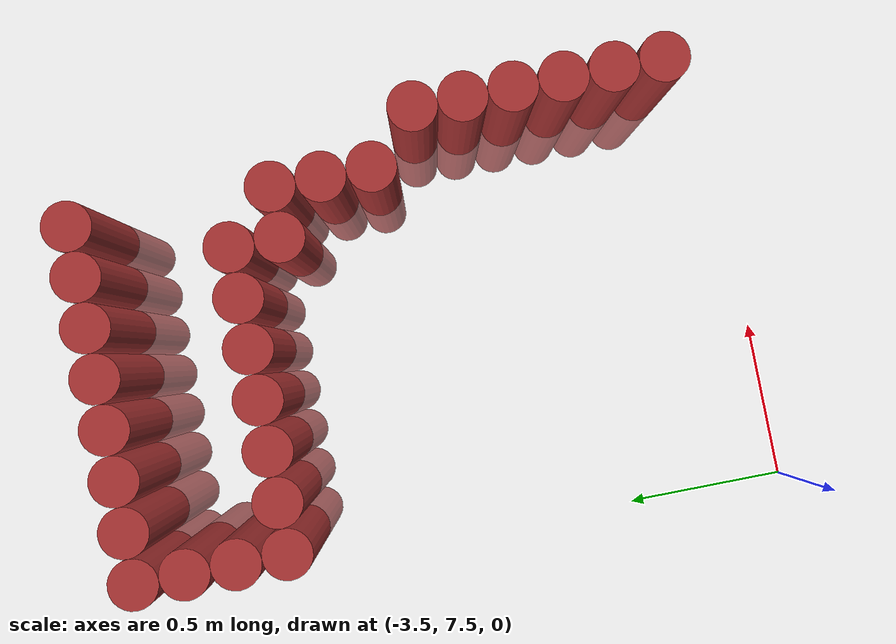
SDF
<sdf version="1.6">
 <world name="default">
  <model name="ground_plane">
   <static>1</static>
   <link name="link">
    <collision name="collision">
     <geometry><plane><normal>0 0 1</normal><size>100 100</size></plane></geometry>
     <surface><friction><ode><mu>100</mu><mu2>50</mu2></ode></friction></surface>
    </collision>
    <visual name="visual">
     <cast_shadows>0</cast_shadows>
     <geometry><plane><normal>0 0 1</normal><size>100 100</size></plane></geometry>
     <material>
      <script><uri>file://media/materials/scripts/gazebo.material</uri><name>Gazebo/Grey</name></script>
     </material>
    </visual>
   </link>
  </model>
  <model name="unit_cylinder_276">
   <static>1</static>
   <pose>-3.375000 9.075000 0.000000 0.000000 0.000000 0.000000</pose>
   <link name="link">
    <inertial>
     <mass>1</mass>
     <inertia><ixx>0.145833</ixx><ixy>0</ixy><ixz>0</ixz><iyy>0.145833</iyy><iyz>0</iyz><izz>0.125</izz></inertia>
    </inertial>
    <collision name="collision">
     <geometry><cylinder><radius>0.075000</radius><length>1</length></cylinder></geometry>
    </collision>
    <visual name="visual">
     <geometry><cylinder><radius>0.075000</radius><length>1</length></cylinder></geometry>
     <material>
      <ambient>0.648000 0.192000 0.192000 1</ambient>
      <diffuse>0.648000 0.192000 0.192000 1</diffuse>
     </material>
     <material>
      <script><name>Gazebo/Grey</name><uri>file://media/materials/scripts/gazebo.material</uri></script>
     </material>
    </visual>
   </link>
  </model>
  <model name="unit_cylinder_277">
   <static>1</static>
   <pose>-3.375000 9.225000 0.000000 0.000000 0.000000 0.000000</pose>
   <link name="link">
    <inertial>
     <mass>1</mass>
     <inertia><ixx>0.145833</ixx><ixy>0</ixy><ixz>0</ixz><iyy>0.145833</iyy><iyz>0</iyz><izz>0.125</izz></inertia>
    </inertial>
    <collision name="collision">
     <geometry><cylinder><radius>0.075000</radius><length>1</length></cylinder></geometry>
    </collision>
    <visual name="visual">
     <geometry><cylinder><radius>0.075000</radius><length>1</length></cylinder></geometry>
     <material>
      <ambient>0.648000 0.192000 0.192000 1</ambient>
      <diffuse>0.648000 0.192000 0.192000 1</diffuse>
     </material>
     <material>
      <script><name>Gazebo/Grey</name><uri>file://media/materials/scripts/gazebo.material</uri></script>
     </material>
    </visual>
   </link>
  </model>
  <model name="unit_cylinder_278">
   <static>1</static>
   <pose>-3.375000 9.375000 0.000000 0.000000 0.000000 0.000000</pose>
   <link name="link">
    <inertial>
     <mass>1</mass>
     <inertia><ixx>0.145833</ixx><ixy>0</ixy><ixz>0</ixz><iyy>0.145833</iyy><iyz>0</iyz><izz>0.125</izz></inertia>
    </inertial>
    <collision name="collision">
     <geometry><cylinder><radius>0.075000</radius><length>1</length></cylinder></geometry>
    </collision>
    <visual name="visual">
     <geometry><cylinder><radius>0.075000</radius><length>1</length></cylinder></geometry>
     <material>
      <ambient>0.648000 0.192000 0.192000 1</ambient>
      <diffuse>0.648000 0.192000 0.192000 1</diffuse>
     </material>
     <material>
      <script><name>Gazebo/Grey</name><uri>file://media/materials/scripts/gazebo.material</uri></script>
     </material>
    </visual>
   </link>
  </model>
  <model name="unit_cylinder_279">
   <static>1</static>
   <pose>-3.375000 9.525000 0.000000 0.000000 0.000000 0.000000</pose>
   <link name="link">
    <inertial>
     <mass>1</mass>
     <inertia><ixx>0.145833</ixx><ixy>0</ixy><ixz>0</ixz><iyy>0.145833</iyy><iyz>0</iyz><izz>0.125</izz></inertia>
    </inertial>
    <collision name="collision">
     <geometry><cylinder><radius>0.075000</radius><length>1</length></cylinder></geometry>
    </collision>
    <visual name="visual">
     <geometry><cylinder><radius>0.075000</radius><length>1</length></cylinder></geometry>
     <material>
      <ambient>0.648000 0.192000 0.192000 1</ambient>
      <diffuse>0.648000 0.192000 0.192000 1</diffuse>
     </material>
     <material>
      <script><name>Gazebo/Grey</name><uri>file://media/materials/scripts/gazebo.material</uri></script>
     </material>
    </visual>
   </link>
  </model>
  <model name="unit_cylinder_280">
   <static>1</static>
   <pose>-3.225000 9.075000 0.000000 0.000000 0.000000 0.000000</pose>
   <link name="link">
    <inertial>
     <mass>1</mass>
     <inertia><ixx>0.145833</ixx><ixy>0</ixy><ixz>0</ixz><iyy>0.145833</iyy><iyz>0</iyz><izz>0.125</izz></inertia>
    </inertial>
    <collision name="collision">
     <geometry><cylinder><radius>0.075000</radius><length>1</length></cylinder></geometry>
    </collision>
    <visual name="visual">
     <geometry><cylinder><radius>0.075000</radius><length>1</length></cylinder></geometry>
     <material>
      <ambient>0.648000 0.192000 0.192000 1</ambient>
      <diffuse>0.648000 0.192000 0.192000 1</diffuse>
     </material>
     <material>
      <script><name>Gazebo/Grey</name><uri>file://media/materials/scripts/gazebo.material</uri></script>
     </material>
    </visual>
   </link>
  </model>
  <model name="unit_cylinder_281">
   <static>1</static>
   <pose>-3.225000 9.525000 0.000000 0.000000 0.000000 0.000000</pose>
   <link name="link">
    <inertial>
     <mass>1</mass>
     <inertia><ixx>0.145833</ixx><ixy>0</ixy><ixz>0</ixz><iyy>0.145833</iyy><iyz>0</iyz><izz>0.125</izz></inertia>
    </inertial>
    <collision name="collision">
     <geometry><cylinder><radius>0.075000</radius><length>1</length></cylinder></geometry>
    </collision>
    <visual name="visual">
     <geometry><cylinder><radius>0.075000</radius><length>1</length></cylinder></geometry>
     <material>
      <ambient>0.648000 0.192000 0.192000 1</ambient>
      <diffuse>0.648000 0.192000 0.192000 1</diffuse>
     </material>
     <material>
      <script><name>Gazebo/Grey</name><uri>file://media/materials/scripts/gazebo.material</uri></script>
     </material>
    </visual>
   </link>
  </model>
  <model name="unit_cylinder_282">
   <static>1</static>
   <pose>-3.075000 9.075000 0.000000 0.000000 0.000000 0.000000</pose>
   <link name="link">
    <inertial>
     <mass>1</mass>
     <inertia><ixx>0.145833</ixx><ixy>0</ixy><ixz>0</ixz><iyy>0.145833</iyy><iyz>0</iyz><izz>0.125</izz></inertia>
    </inertial>
    <collision name="collision">
     <geometry><cylinder><radius>0.075000</radius><length>1</length></cylinder></geometry>
    </collision>
    <visual name="visual">
     <geometry><cylinder><radius>0.075000</radius><length>1</length></cylinder></geometry>
     <material>
      <ambient>0.648000 0.192000 0.192000 1</ambient>
      <diffuse>0.648000 0.192000 0.192000 1</diffuse>
     </material>
     <material>
      <script><name>Gazebo/Grey</name><uri>file://media/materials/scripts/gazebo.material</uri></script>
     </material>
    </visual>
   </link>
  </model>
  <model name="unit_cylinder_283">
   <static>1</static>
   <pose>-3.075000 9.525000 0.000000 0.000000 0.000000 0.000000</pose>
   <link name="link">
    <inertial>
     <mass>1</mass>
     <inertia><ixx>0.145833</ixx><ixy>0</ixy><ixz>0</ixz><iyy>0.145833</iyy><iyz>0</iyz><izz>0.125</izz></inertia>
    </inertial>
    <collision name="collision">
     <geometry><cylinder><radius>0.075000</radius><length>1</length></cylinder></geometry>
    </collision>
    <visual name="visual">
     <geometry><cylinder><radius>0.075000</radius><length>1</length></cylinder></geometry>
     <material>
      <ambient>0.648000 0.192000 0.192000 1</ambient>
      <diffuse>0.648000 0.192000 0.192000 1</diffuse>
     </material>
     <material>
      <script><name>Gazebo/Grey</name><uri>file://media/materials/scripts/gazebo.material</uri></script>
     </material>
    </visual>
   </link>
  </model>
  <model name="unit_cylinder_284">
   <static>1</static>
   <pose>-2.925000 9.075000 0.000000 0.000000 0.000000 0.000000</pose>
   <link name="link">
    <inertial>
     <mass>1</mass>
     <inertia><ixx>0.145833</ixx><ixy>0</ixy><ixz>0</ixz><iyy>0.145833</iyy><iyz>0</iyz><izz>0.125</izz></inertia>
    </inertial>
    <collision name="collision">
     <geometry><cylinder><radius>0.075000</radius><length>1</length></cylinder></geometry>
    </collision>
    <visual name="visual">
     <geometry><cylinder><radius>0.075000</radius><length>1</length></cylinder></geometry>
     <material>
      <ambient>0.648000 0.192000 0.192000 1</ambient>
      <diffuse>0.648000 0.192000 0.192000 1</diffuse>
     </material>
     <material>
      <script><name>Gazebo/Grey</name><uri>file://media/materials/scripts/gazebo.material</uri></script>
     </material>
    </visual>
   </link>
  </model>
  <model name="unit_cylinder_285">
   <static>1</static>
   <pose>-2.925000 9.525000 0.000000 0.000000 0.000000 0.000000</pose>
   <link name="link">
    <inertial>
     <mass>1</mass>
     <inertia><ixx>0.145833</ixx><ixy>0</ixy><ixz>0</ixz><iyy>0.145833</iyy><iyz>0</iyz><izz>0.125</izz></inertia>
    </inertial>
    <collision name="collision">
     <geometry><cylinder><radius>0.075000</radius><length>1</length></cylinder></geometry>
    </collision>
    <visual name="visual">
     <geometry><cylinder><radius>0.075000</radius><length>1</length></cylinder></geometry>
     <material>
      <ambient>0.648000 0.192000 0.192000 1</ambient>
      <diffuse>0.648000 0.192000 0.192000 1</diffuse>
     </material>
     <material>
      <script><name>Gazebo/Grey</name><uri>file://media/materials/scripts/gazebo.material</uri></script>
     </material>
    </visual>
   </link>
  </model>
  <model name="unit_cylinder_286">
   <static>1</static>
   <pose>-2.775000 9.075000 0.000000 0.000000 0.000000 0.000000</pose>
   <link name="link">
    <inertial>
     <mass>1</mass>
     <inertia><ixx>0.145833</ixx><ixy>0</ixy><ixz>0</ixz><iyy>0.145833</iyy><iyz>0</iyz><izz>0.125</izz></inertia>
    </inertial>
    <collision name="collision">
     <geometry><cylinder><radius>0.075000</radius><length>1</length></cylinder></geometry>
    </collision>
    <visual name="visual">
     <geometry><cylinder><radius>0.075000</radius><length>1</length></cylinder></geometry>
     <material>
      <ambient>0.648000 0.192000 0.192000 1</ambient>
      <diffuse>0.648000 0.192000 0.192000 1</diffuse>
     </material>
     <material>
      <script><name>Gazebo/Grey</name><uri>file://media/materials/scripts/gazebo.material</uri></script>
     </material>
    </visual>
   </link>
  </model>
  <model name="unit_cylinder_287">
   <static>1</static>
   <pose>-2.775000 9.525000 0.000000 0.000000 0.000000 0.000000</pose>
   <link name="link">
    <inertial>
     <mass>1</mass>
     <inertia><ixx>0.145833</ixx><ixy>0</ixy><ixz>0</ixz><iyy>0.145833</iyy><iyz>0</iyz><izz>0.125</izz></inertia>
    </inertial>
    <collision name="collision">
     <geometry><cylinder><radius>0.075000</radius><length>1</length></cylinder></geometry>
    </collision>
    <visual name="visual">
     <geometry><cylinder><radius>0.075000</radius><length>1</length></cylinder></geometry>
     <material>
      <ambient>0.648000 0.192000 0.192000 1</ambient>
      <diffuse>0.648000 0.192000 0.192000 1</diffuse>
     </material>
     <material>
      <script><name>Gazebo/Grey</name><uri>file://media/materials/scripts/gazebo.material</uri></script>
     </material>
    </visual>
   </link>
  </model>
  <model name="unit_cylinder_288">
   <static>1</static>
   <pose>-2.625000 9.075000 0.000000 0.000000 0.000000 0.000000</pose>
   <link name="link">
    <inertial>
     <mass>1</mass>
     <inertia><ixx>0.145833</ixx><ixy>0</ixy><ixz>0</ixz><iyy>0.145833</iyy><iyz>0</iyz><izz>0.125</izz></inertia>
    </inertial>
    <collision name="collision">
     <geometry><cylinder><radius>0.075000</radius><length>1</length></cylinder></geometry>
    </collision>
    <visual name="visual">
     <geometry><cylinder><radius>0.075000</radius><length>1</length></cylinder></geometry>
     <material>
      <ambient>0.648000 0.192000 0.192000 1</ambient>
      <diffuse>0.648000 0.192000 0.192000 1</diffuse>
     </material>
     <material>
      <script><name>Gazebo/Grey</name><uri>file://media/materials/scripts/gazebo.material</uri></script>
     </material>
    </visual>
   </link>
  </model>
  <model name="unit_cylinder_289">
   <static>1</static>
   <pose>-2.625000 9.525000 0.000000 0.000000 0.000000 0.000000</pose>
   <link name="link">
    <inertial>
     <mass>1</mass>
     <inertia><ixx>0.145833</ixx><ixy>0</ixy><ixz>0</ixz><iyy>0.145833</iyy><iyz>0</iyz><izz>0.125</izz></inertia>
    </inertial>
    <collision name="collision">
     <geometry><cylinder><radius>0.075000</radius><length>1</length></cylinder></geometry>
    </collision>
    <visual name="visual">
     <geometry><cylinder><radius>0.075000</radius><length>1</length></cylinder></geometry>
     <material>
      <ambient>0.648000 0.192000 0.192000 1</ambient>
      <diffuse>0.648000 0.192000 0.192000 1</diffuse>
     </material>
     <material>
      <script><name>Gazebo/Grey</name><uri>file://media/materials/scripts/gazebo.material</uri></script>
     </material>
    </visual>
   </link>
  </model>
  <model name="unit_cylinder_290">
   <static>1</static>
   <pose>-2.475000 8.925000 0.000000 0.000000 0.000000 0.000000</pose>
   <link name="link">
    <inertial>
     <mass>1</mass>
     <inertia><ixx>0.145833</ixx><ixy>0</ixy><ixz>0</ixz><iyy>0.145833</iyy><iyz>0</iyz><izz>0.125</izz></inertia>
    </inertial>
    <collision name="collision">
     <geometry><cylinder><radius>0.075000</radius><length>1</length></cylinder></geometry>
    </collision>
    <visual name="visual">
     <geometry><cylinder><radius>0.075000</radius><length>1</length></cylinder></geometry>
     <material>
      <ambient>0.648000 0.192000 0.192000 1</ambient>
      <diffuse>0.648000 0.192000 0.192000 1</diffuse>
     </material>
     <material>
      <script><name>Gazebo/Grey</name><uri>file://media/materials/scripts/gazebo.material</uri></script>
     </material>
    </visual>
   </link>
  </model>
  <model name="unit_cylinder_291">
   <static>1</static>
   <pose>-2.475000 9.075000 0.000000 0.000000 0.000000 0.000000</pose>
   <link name="link">
    <inertial>
     <mass>1</mass>
     <inertia><ixx>0.145833</ixx><ixy>0</ixy><ixz>0</ixz><iyy>0.145833</iyy><iyz>0</iyz><izz>0.125</izz></inertia>
    </inertial>
    <collision name="collision">
     <geometry><cylinder><radius>0.075000</radius><length>1</length></cylinder></geometry>
    </collision>
    <visual name="visual">
     <geometry><cylinder><radius>0.075000</radius><length>1</length></cylinder></geometry>
     <material>
      <ambient>0.648000 0.192000 0.192000 1</ambient>
      <diffuse>0.648000 0.192000 0.192000 1</diffuse>
     </material>
     <material>
      <script><name>Gazebo/Grey</name><uri>file://media/materials/scripts/gazebo.material</uri></script>
     </material>
    </visual>
   </link>
  </model>
  <model name="unit_cylinder_292">
   <static>1</static>
   <pose>-2.475000 9.525000 0.000000 0.000000 0.000000 0.000000</pose>
   <link name="link">
    <inertial>
     <mass>1</mass>
     <inertia><ixx>0.145833</ixx><ixy>0</ixy><ixz>0</ixz><iyy>0.145833</iyy><iyz>0</iyz><izz>0.125</izz></inertia>
    </inertial>
    <collision name="collision">
     <geometry><cylinder><radius>0.075000</radius><length>1</length></cylinder></geometry>
    </collision>
    <visual name="visual">
     <geometry><cylinder><radius>0.075000</radius><length>1</length></cylinder></geometry>
     <material>
      <ambient>0.648000 0.192000 0.192000 1</ambient>
      <diffuse>0.648000 0.192000 0.192000 1</diffuse>
     </material>
     <material>
      <script><name>Gazebo/Grey</name><uri>file://media/materials/scripts/gazebo.material</uri></script>
     </material>
    </visual>
   </link>
  </model>
  <model name="unit_cylinder_298">
   <static>1</static>
   <pose>-2.325000 8.625000 0.000000 0.000000 0.000000 0.000000</pose>
   <link name="link">
    <inertial>
     <mass>1</mass>
     <inertia><ixx>0.145833</ixx><ixy>0</ixy><ixz>0</ixz><iyy>0.145833</iyy><iyz>0</iyz><izz>0.125</izz></inertia>
    </inertial>
    <collision name="collision">
     <geometry><cylinder><radius>0.075000</radius><length>1</length></cylinder></geometry>
    </collision>
    <visual name="visual">
     <geometry><cylinder><radius>0.075000</radius><length>1</length></cylinder></geometry>
     <material>
      <ambient>0.648000 0.192000 0.192000 1</ambient>
      <diffuse>0.648000 0.192000 0.192000 1</diffuse>
     </material>
     <material>
      <script><name>Gazebo/Grey</name><uri>file://media/materials/scripts/gazebo.material</uri></script>
     </material>
    </visual>
   </link>
  </model>
  <model name="unit_cylinder_299">
   <static>1</static>
   <pose>-2.325000 8.775000 0.000000 0.000000 0.000000 0.000000</pose>
   <link name="link">
    <inertial>
     <mass>1</mass>
     <inertia><ixx>0.145833</ixx><ixy>0</ixy><ixz>0</ixz><iyy>0.145833</iyy><iyz>0</iyz><izz>0.125</izz></inertia>
    </inertial>
    <collision name="collision">
     <geometry><cylinder><radius>0.075000</radius><length>1</length></cylinder></geometry>
    </collision>
    <visual name="visual">
     <geometry><cylinder><radius>0.075000</radius><length>1</length></cylinder></geometry>
     <material>
      <ambient>0.648000 0.192000 0.192000 1</ambient>
      <diffuse>0.648000 0.192000 0.192000 1</diffuse>
     </material>
     <material>
      <script><name>Gazebo/Grey</name><uri>file://media/materials/scripts/gazebo.material</uri></script>
     </material>
    </visual>
   </link>
  </model>
  <model name="unit_cylinder_300">
   <static>1</static>
   <pose>-2.325000 8.925000 0.000000 0.000000 0.000000 0.000000</pose>
   <link name="link">
    <inertial>
     <mass>1</mass>
     <inertia><ixx>0.145833</ixx><ixy>0</ixy><ixz>0</ixz><iyy>0.145833</iyy><iyz>0</iyz><izz>0.125</izz></inertia>
    </inertial>
    <collision name="collision">
     <geometry><cylinder><radius>0.075000</radius><length>1</length></cylinder></geometry>
    </collision>
    <visual name="visual">
     <geometry><cylinder><radius>0.075000</radius><length>1</length></cylinder></geometry>
     <material>
      <ambient>0.648000 0.192000 0.192000 1</ambient>
      <diffuse>0.648000 0.192000 0.192000 1</diffuse>
     </material>
     <material>
      <script><name>Gazebo/Grey</name><uri>file://media/materials/scripts/gazebo.material</uri></script>
     </material>
    </visual>
   </link>
  </model>
  <model name="unit_cylinder_301">
   <static>1</static>
   <pose>-2.325000 9.525000 0.000000 0.000000 0.000000 0.000000</pose>
   <link name="link">
    <inertial>
     <mass>1</mass>
     <inertia><ixx>0.145833</ixx><ixy>0</ixy><ixz>0</ixz><iyy>0.145833</iyy><iyz>0</iyz><izz>0.125</izz></inertia>
    </inertial>
    <collision name="collision">
     <geometry><cylinder><radius>0.075000</radius><length>1</length></cylinder></geometry>
    </collision>
    <visual name="visual">
     <geometry><cylinder><radius>0.075000</radius><length>1</length></cylinder></geometry>
     <material>
      <ambient>0.648000 0.192000 0.192000 1</ambient>
      <diffuse>0.648000 0.192000 0.192000 1</diffuse>
     </material>
     <material>
      <script><name>Gazebo/Grey</name><uri>file://media/materials/scripts/gazebo.material</uri></script>
     </material>
    </visual>
   </link>
  </model>
  <model name="unit_cylinder_316">
   <static>1</static>
   <pose>-2.175000 7.725000 0.000000 0.000000 0.000000 0.000000</pose>
   <link name="link">
    <inertial>
     <mass>1</mass>
     <inertia><ixx>0.145833</ixx><ixy>0</ixy><ixz>0</ixz><iyy>0.145833</iyy><iyz>0</iyz><izz>0.125</izz></inertia>
    </inertial>
    <collision name="collision">
     <geometry><cylinder><radius>0.075000</radius><length>1</length></cylinder></geometry>
    </collision>
    <visual name="visual">
     <geometry><cylinder><radius>0.075000</radius><length>1</length></cylinder></geometry>
     <material>
      <ambient>0.648000 0.192000 0.192000 1</ambient>
      <diffuse>0.648000 0.192000 0.192000 1</diffuse>
     </material>
     <material>
      <script><name>Gazebo/Grey</name><uri>file://media/materials/scripts/gazebo.material</uri></script>
     </material>
    </visual>
   </link>
  </model>
  <model name="unit_cylinder_317">
   <static>1</static>
   <pose>-2.175000 7.875000 0.000000 0.000000 0.000000 0.000000</pose>
   <link name="link">
    <inertial>
     <mass>1</mass>
     <inertia><ixx>0.145833</ixx><ixy>0</ixy><ixz>0</ixz><iyy>0.145833</iyy><iyz>0</iyz><izz>0.125</izz></inertia>
    </inertial>
    <collision name="collision">
     <geometry><cylinder><radius>0.075000</radius><length>1</length></cylinder></geometry>
    </collision>
    <visual name="visual">
     <geometry><cylinder><radius>0.075000</radius><length>1</length></cylinder></geometry>
     <material>
      <ambient>0.648000 0.192000 0.192000 1</ambient>
      <diffuse>0.648000 0.192000 0.192000 1</diffuse>
     </material>
     <material>
      <script><name>Gazebo/Grey</name><uri>file://media/materials/scripts/gazebo.material</uri></script>
     </material>
    </visual>
   </link>
  </model>
  <model name="unit_cylinder_318">
   <static>1</static>
   <pose>-2.175000 8.025000 0.000000 0.000000 0.000000 0.000000</pose>
   <link name="link">
    <inertial>
     <mass>1</mass>
     <inertia><ixx>0.145833</ixx><ixy>0</ixy><ixz>0</ixz><iyy>0.145833</iyy><iyz>0</iyz><izz>0.125</izz></inertia>
    </inertial>
    <collision name="collision">
     <geometry><cylinder><radius>0.075000</radius><length>1</length></cylinder></geometry>
    </collision>
    <visual name="visual">
     <geometry><cylinder><radius>0.075000</radius><length>1</length></cylinder></geometry>
     <material>
      <ambient>0.648000 0.192000 0.192000 1</ambient>
      <diffuse>0.648000 0.192000 0.192000 1</diffuse>
     </material>
     <material>
      <script><name>Gazebo/Grey</name><uri>file://media/materials/scripts/gazebo.material</uri></script>
     </material>
    </visual>
   </link>
  </model>
  <model name="unit_cylinder_319">
   <static>1</static>
   <pose>-2.175000 8.175000 0.000000 0.000000 0.000000 0.000000</pose>
   <link name="link">
    <inertial>
     <mass>1</mass>
     <inertia><ixx>0.145833</ixx><ixy>0</ixy><ixz>0</ixz><iyy>0.145833</iyy><iyz>0</iyz><izz>0.125</izz></inertia>
    </inertial>
    <collision name="collision">
     <geometry><cylinder><radius>0.075000</radius><length>1</length></cylinder></geometry>
    </collision>
    <visual name="visual">
     <geometry><cylinder><radius>0.075000</radius><length>1</length></cylinder></geometry>
     <material>
      <ambient>0.648000 0.192000 0.192000 1</ambient>
      <diffuse>0.648000 0.192000 0.192000 1</diffuse>
     </material>
     <material>
      <script><name>Gazebo/Grey</name><uri>file://media/materials/scripts/gazebo.material</uri></script>
     </material>
    </visual>
   </link>
  </model>
  <model name="unit_cylinder_320">
   <static>1</static>
   <pose>-2.175000 8.325000 0.000000 0.000000 0.000000 0.000000</pose>
   <link name="link">
    <inertial>
     <mass>1</mass>
     <inertia><ixx>0.145833</ixx><ixy>0</ixy><ixz>0</ixz><iyy>0.145833</iyy><iyz>0</iyz><izz>0.125</izz></inertia>
    </inertial>
    <collision name="collision">
     <geometry><cylinder><radius>0.075000</radius><length>1</length></cylinder></geometry>
    </collision>
    <visual name="visual">
     <geometry><cylinder><radius>0.075000</radius><length>1</length></cylinder></geometry>
     <material>
      <ambient>0.648000 0.192000 0.192000 1</ambient>
      <diffuse>0.648000 0.192000 0.192000 1</diffuse>
     </material>
     <material>
      <script><name>Gazebo/Grey</name><uri>file://media/materials/scripts/gazebo.material</uri></script>
     </material>
    </visual>
   </link>
  </model>
  <model name="unit_cylinder_321">
   <static>1</static>
   <pose>-2.175000 8.475000 0.000000 0.000000 0.000000 0.000000</pose>
   <link name="link">
    <inertial>
     <mass>1</mass>
     <inertia><ixx>0.145833</ixx><ixy>0</ixy><ixz>0</ixz><iyy>0.145833</iyy><iyz>0</iyz><izz>0.125</izz></inertia>
    </inertial>
    <collision name="collision">
     <geometry><cylinder><radius>0.075000</radius><length>1</length></cylinder></geometry>
    </collision>
    <visual name="visual">
     <geometry><cylinder><radius>0.075000</radius><length>1</length></cylinder></geometry>
     <material>
      <ambient>0.648000 0.192000 0.192000 1</ambient>
      <diffuse>0.648000 0.192000 0.192000 1</diffuse>
     </material>
     <material>
      <script><name>Gazebo/Grey</name><uri>file://media/materials/scripts/gazebo.material</uri></script>
     </material>
    </visual>
   </link>
  </model>
 </world>
</sdf>
